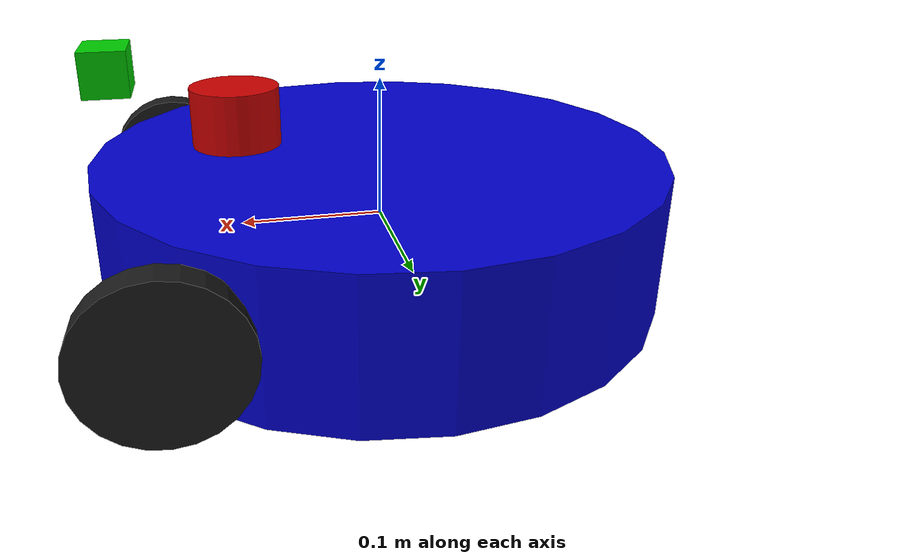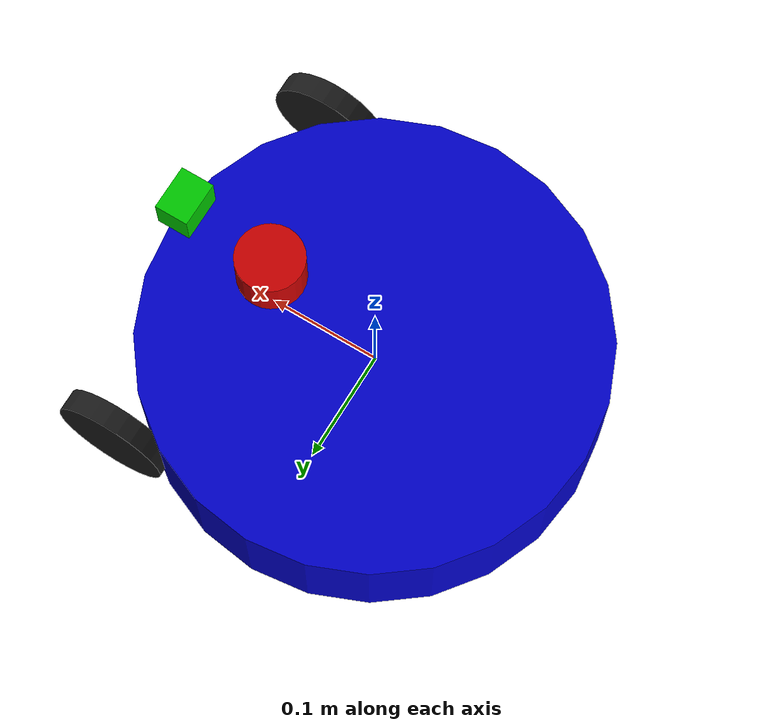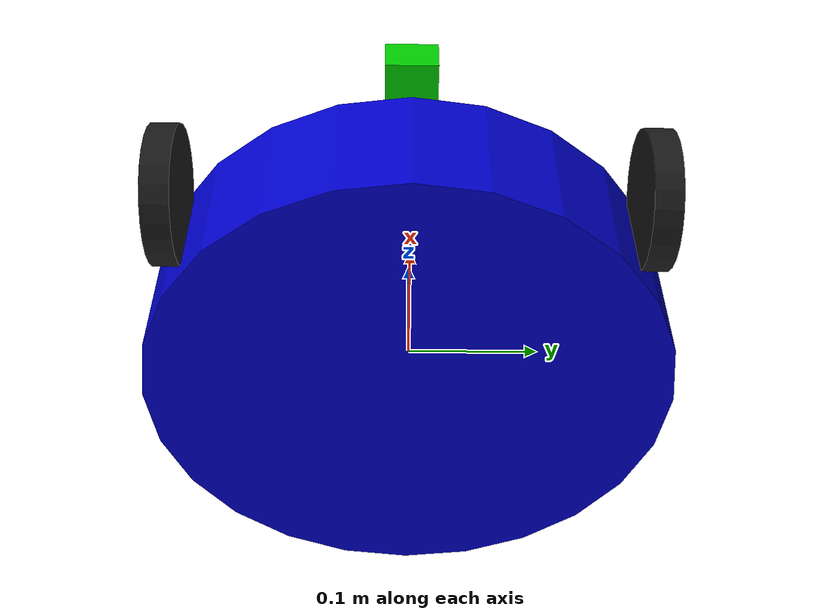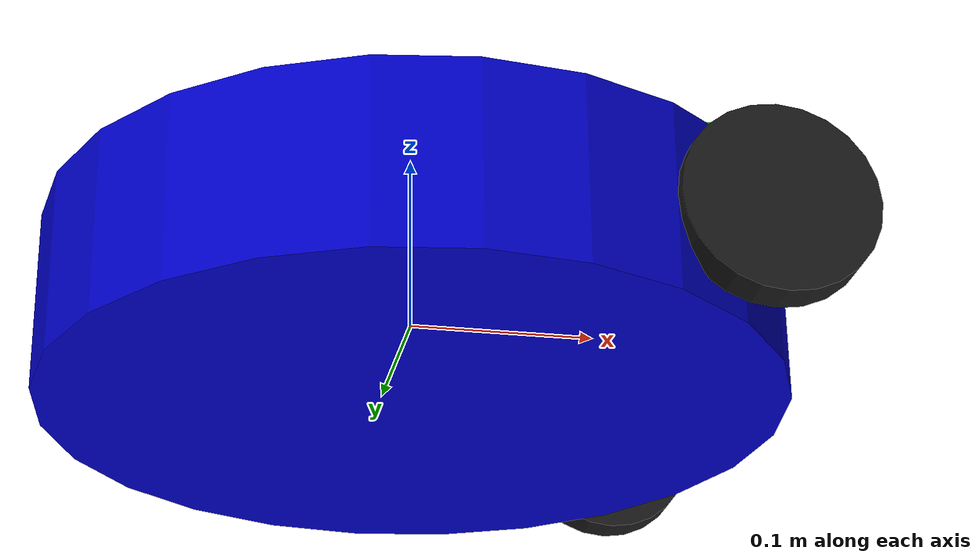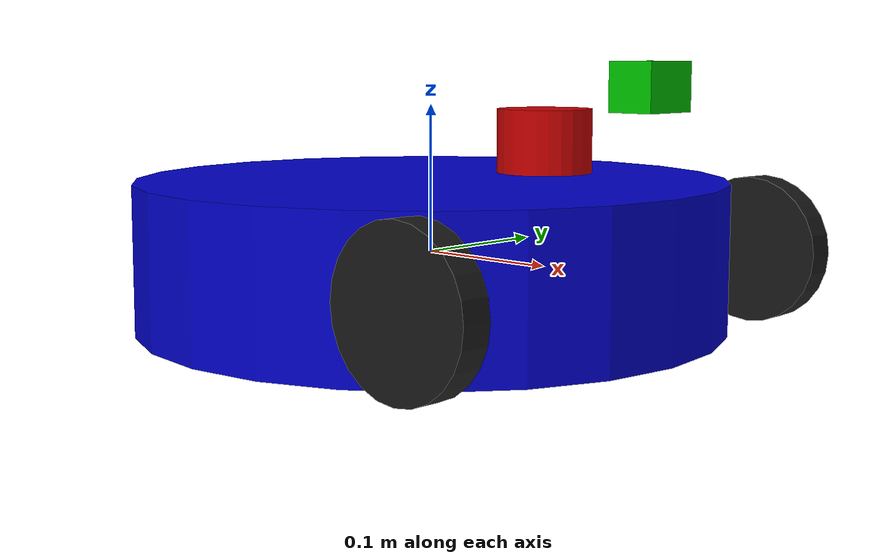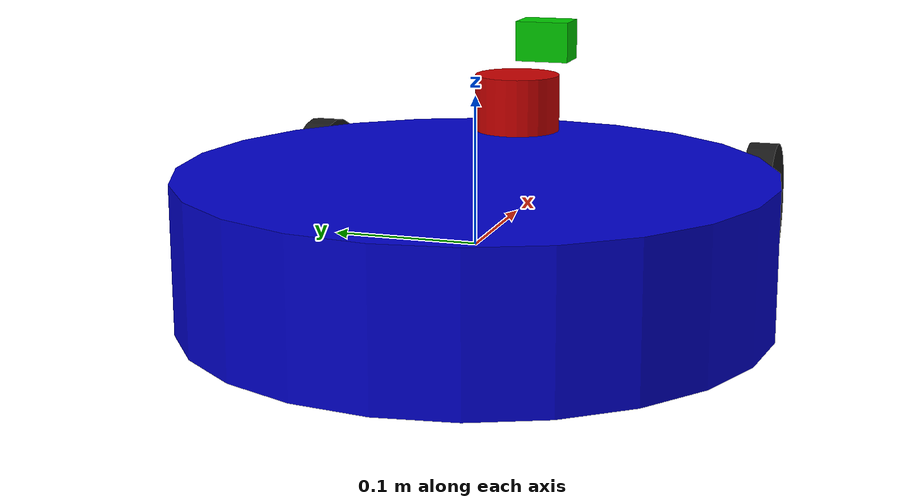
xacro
<?xml version="1.0"?>
<robot name="my_circular_robot" xmlns:xacro="http://www.ros.org/wiki/xacro">

  <!-- Propriedades e Constantes Globais -->
  <xacro:property name="M_PI" value="3.1415926535897931" />
  <xacro:property name="DEG_TO_RAD" value="${M_PI/180}" />

  <!-- Dimensões do corpo base (circular) -->
  <xacro:property name="base_radius" value="0.20" />  <!-- Raio da base em metros -->
  <xacro:property name="base_height" value="0.10" />  <!-- Altura da base em metros -->
  <xacro:property name="base_mass" value="5.0" />     <!-- Massa da base em kg -->

  <!-- Dimensões e posição das rodas -->
  <xacro:property name="wheel_radius" value="0.05" />
  <xacro:property name="wheel_thickness" value="0.02" />
  <xacro:property name="wheel_mass" value="0.5" />
  <xacro:property name="wheel_offset_x" value="0.15" /> <!-- Distância do centro da base ao centro da roda -->
  <xacro:property name="wheel_offset_y" value="0.17" /> <!-- Distância do centro da base ao centro da roda -->
  <xacro:property name="wheel_offset_z" value="${-base_height/2 + wheel_radius}" />

  <!-- Dimensões e posição da roda caster -->
  <xacro:property name="caster_radius" value="0.03" />
  <xacro:property name="caster_mass" value="0.1" />
  <xacro:property name="caster_offset_x" value="-0.15" />
  <xacro:property name="caster_offset_z" value="${-base_height/2 + caster_radius}" />

  <!-- Dimensões e posição do Lidar -->
  <xacro:property name="lidar_radius" value="0.03" />
  <xacro:property name="lidar_height" value="0.04" />
  <xacro:property name="lidar_mass" value="0.2" />
  <xacro:property name="lidar_offset_x" value="0.10" />
  <xacro:property name="lidar_offset_y" value="0.0" />
  <xacro:property name="lidar_offset_z" value="${base_height/2 + lidar_height/2 + 0.01}" /> <!-- Acima da base -->

  <!-- Dimensões e posição da Câmera -->
  <xacro:property name="camera_size_x" value="0.03" />
  <xacro:property name="camera_size_y" value="0.04" />
  <xacro:property name="camera_size_z" value="0.03" />
  <xacro:property name="camera_mass" value="0.1" />
  <xacro:property name="camera_offset_x" value="0.18" />
  <xacro:property name="camera_offset_y" value="0.0" />
  <xacro:property name="camera_offset_z" value="${base_height/2 + camera_size_z/2 + 0.05}" /> <!-- Acima da base, um pouco mais alto que o lidar -->

  <!-- Macros para Geometrias e Inércias Comuns -->

  <!-- Macro para inércia de um cilindro -->
  <xacro:macro name="cylinder_inertia" params="m r h">
    <inertia ixx="${m*(3*r*r + h*h)/12}" ixy="0" ixz="0"
             iyy="${m*(3*r*r + h*h)/12}" iyz="0"
             izz="${m*r*r/2}" />
  </xacro:macro>

  <!-- Macro para inércia de uma esfera -->
  <xacro:macro name="sphere_inertia" params="m r">
    <inertia ixx="${2*m*r*r/5}" ixy="0" ixz="0"
             iyy="${2*m*r*r/5}" iyz="0"
             izz="${2*m*r*r/5}" />
  </xacro:macro>

  <!-- Macro para inércia de uma caixa -->
  <xacro:macro name="box_inertia" params="m x y z">
    <inertia ixx="${m*(y*y + z*z)/12}" ixy="0" ixz="0"
             iyy="${m*(x*x + z*z)/12}" iyz="0"
             izz="${m*(x*x + y*y)/12}" />
  </xacro:macro>

  <!-- Link Base (base_link) - ESTE É O ÚNICO LINK RAIZ DO MODELO -->
  <link name="base_link">
    <visual>
      <origin xyz="0 0 0" rpy="0 0 0"/>
      <geometry>
        <cylinder radius="${base_radius}" length="${base_height}"/>
      </geometry>
      <material name="blue">
        <color rgba="0 0 0.8 1"/>
      </material>
    </visual>
    <collision>
      <origin xyz="0 0 0" rpy="0 0 0"/>
      <geometry>
        <cylinder radius="${base_radius}" length="${base_height}"/>
      </geometry>
    </collision>
    <inertial>
      <origin xyz="0 0 0" rpy="0 0 0"/>
      <mass value="${base_mass}"/>
      <xacro:cylinder_inertia m="${base_mass}" r="${base_radius}" h="${base_height}"/>
    </inertial>
  </link>

  <!-- Base Footprint (frame virtual no chão) - FILHO DE base_link -->
  <link name="base_footprint"/>
  <joint name="base_footprint_joint" type="fixed">
    <parent link="base_link"/>
    <child link="base_footprint"/>
    <!-- Posiciona o base_footprint no chão, abaixo do centro do base_link -->
    <origin xyz="0 0 ${-base_height/2}" rpy="0 0 0"/>
  </joint>

  <!-- Macro para Rodas (left_wheel_link, right_wheel_link) -->
  <xacro:macro name="wheel" params="prefix parent_link reflect_y">
    <link name="${prefix}_wheel_link">
      <visual>
        <origin xyz="0 0 0" rpy="${M_PI/2} 0 0"/> <!-- Roda rotacionada para ficar em pé -->
        <geometry>
          <cylinder radius="${wheel_radius}" length="${wheel_thickness}"/>
        </geometry>
        <material name="black">
          <color rgba="0.1 0.1 0.1 1"/>
        </material>
      </visual>
      <collision>
        <origin xyz="0 0 0" rpy="${M_PI/2} 0 0"/>
        <geometry>
          <cylinder radius="${wheel_radius}" length="${wheel_thickness}"/>
        </geometry>
      </collision>
      <inertial>
        <origin xyz="0 0 0" rpy="0 0 0"/>
        <mass value="${wheel_mass}"/>
        <xacro:cylinder_inertia m="${wheel_mass}" r="${wheel_radius}" h="${wheel_thickness}"/>
      </inertial>
    </link>

    <joint name="${prefix}_wheel_joint" type="continuous">
      <parent link="${parent_link}"/>
      <child link="${prefix}_wheel_link"/>
      <!-- Posição da roda em relação ao centro da base -->
      <origin xyz="${wheel_offset_x} ${reflect_y * wheel_offset_y} ${wheel_offset_z}" rpy="0 0 0"/>
      <axis xyz="0 1 0"/> <!-- Eixo de rotação da roda (em torno do Y local) -->
    </joint>
  </xacro:macro>

  <!-- Instancia as rodas -->
  <xacro:wheel prefix="left" parent_link="base_link" reflect_y="1"/>
  <xacro:wheel prefix="right" parent_link="base_link" reflect_y="-1"/>

  <!-- Roda Caster (caster_wheel_link) -->
  <link name="caster_wheel_link">
    <visual>
      <origin xyz="0 0 0" rpy="0 0 0"/>
      <geometry>
        <sphere radius="${caster_radius}"/>
      </geometry>
      <material name="grey">
        <color rgba="0.7 0.7 0.7 1"/>
      </material>
    </visual>
    <collision>
      <origin xyz="0 0 0" rpy="0 0 0"/>
      <geometry>
        <sphere radius="${caster_radius}"/>
      </geometry>
    </collision>
    <inertial>
      <origin xyz="0 0 0" rpy="0 0 0"/>
      <mass value="${caster_mass}"/>
      <xacro:sphere_inertia m="${caster_mass}" r="${caster_radius}"/>
    </inertial>
  </link>

  <joint name="caster_wheel_joint" type="fixed">
    <parent link="base_link"/>
    <child link="caster_wheel_link"/>
    <!-- Posição da roda caster na frente/atrás da base -->
    <origin xyz="${caster_offset_x} 0 ${caster_offset_z}" rpy="0 0 0"/>
  </joint>

  <!-- Sensor Lidar (lidar_link) -->
  <link name="lidar_link">
    <visual>
      <origin xyz="0 0 0" rpy="0 0 0"/>
      <geometry>
        <cylinder radius="${lidar_radius}" length="${lidar_height}"/>
      </geometry>
      <material name="red">
        <color rgba="0.8 0 0 1"/>
      </material>
    </visual>
    <collision>
      <origin xyz="0 0 0" rpy="0 0 0"/>
      <geometry>
        <cylinder radius="${lidar_radius}" length="${lidar_height}"/>
      </geometry>
    </collision>
    <inertial>
      <origin xyz="0 0 0" rpy="0 0 0"/>
      <mass value="${lidar_mass}"/>
      <xacro:cylinder_inertia m="${lidar_mass}" r="${lidar_radius}" h="${lidar_height}"/>
    </inertial>
  </link>

  <joint name="lidar_joint" type="fixed">
    <parent link="base_link"/>
    <child link="lidar_link"/>
    <!-- Posição do lidar acima da base -->
    <origin xyz="${lidar_offset_x} ${lidar_offset_y} ${lidar_offset_z}" rpy="0 0 0"/>
  </joint>

  <!-- Sensor Câmera (camera_link) -->
  <link name="camera_link">
    <visual>
      <origin xyz="0 0 0" rpy="0 0 0"/>
      <geometry>
        <box size="${camera_size_x} ${camera_size_y} ${camera_size_z}"/>
      </geometry>
      <material name="green">
        <color rgba="0 0.8 0 1"/>
      </material>
    </visual>
    <collision>
      <origin xyz="0 0 0" rpy="0 0 0"/>
      <geometry>
        <box size="${camera_size_x} ${camera_size_y} ${camera_size_z}"/>
      </geometry>
    </collision>
    <inertial>
      <origin xyz="0 0 0" rpy="0 0 0"/>
      <mass value="${camera_mass}"/>
      <xacro:box_inertia m="${camera_mass}" x="${camera_size_x}" y="${camera_size_y}" z="${camera_size_z}"/>
    </inertial>
  </link>

  <joint name="camera_joint" type="fixed">
    <parent link="base_link"/>
    <child link="camera_link"/>
    <!-- Posição da câmera acima da base -->
    <origin xyz="${camera_offset_x} ${camera_offset_y} ${camera_offset_z}" rpy="0 0 0"/>
  </joint>

</robot>
